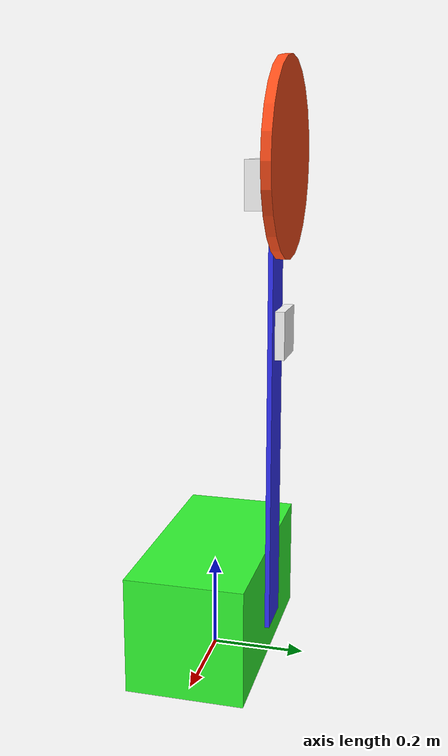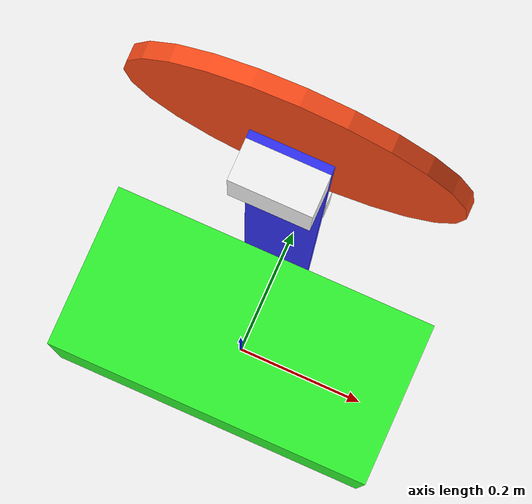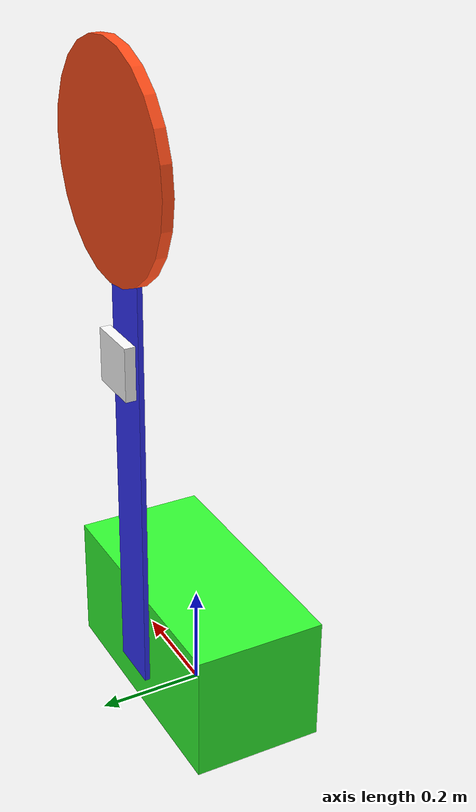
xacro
<?xml version="1.0"?>
<robot xmlns:xacro="http://www.ros.org/wiki/xacro"  name="robot">

    <xacro:include filename="inertia_tensor.xacro"/>
    <xacro:include filename="gazebo_control.xacro"/>

    <xacro:property name="arm_length" value="1"/>
    <xacro:property name="arm_width" value="0.1"/>
    <xacro:property name="arm_thickness" value="0.01"/>
    <xacro:property name="arm_mass" value="0.5"/>
    <xacro:property name="wheel_radius" value="0.2"/>
    <xacro:property name="wheel_thickness" value="0.02"/>
    <xacro:property name="wheel_mass" value="0.05"/>
    <xacro:property name="imu_distance" value="0.65"/>

    <link name="world"></link>

    <!-- base -->
    <joint name="base_joint" type="fixed">
        <origin xyz="0 0 0" rpy="0 0 0"/>
        <parent link="world"/>
        <child link="base_link"/>
    </joint>

    <link name="base_link">
        <visual>
            <origin xyz="0 0 0.125" rpy="0 0 0"/>
            <geometry>
                <box size="0.5 0.25 0.25" />
            </geometry>
            <material name="white">
                <color rgba="0.2 1 0.2 1"/>
            </material>
        </visual>
        <collision>
            <origin xyz="0 0 0.125" rpy="0 0 0"/>
            <geometry>
                <box size="0.5 0.25 0.25" />
            </geometry>
        </collision>
        <xacro:inertial_box mass="12" x="0.5" y="0.25" z="0.25">
            <origin xyz="0 0 0.05" rpy="0 0 0"/>
        </xacro:inertial_box>
    </link>

    <!-- arm -->
    <joint name="arm_joint" type="revolute">
        <origin xyz="0 0.13 0.075" rpy="0 0 0"/>
        <parent link="base_link"/>
        <child link="arm_link"/>
        <axis xyz="0 1 0"/>
        <limit lower="-1.57" upper="1.57" effort="100" velocity="100"/>
    </joint>

    <link name="arm_link">
        <visual>
            <origin xyz="0 0 0.5" rpy="0 0 0"/>
            <geometry>
                <box size="${arm_width} ${arm_thickness} ${arm_length}" />
            </geometry>
            <material name="blue"/>
        </visual>
        <collision>
            <origin xyz="0 0 0.5" rpy="0 0 0"/>
            <geometry>
                <box size="${arm_width} ${arm_thickness} ${arm_length}" />
            </geometry>
        </collision>
        <xacro:inertial_box mass="${arm_mass}" x="${arm_width}" y="${arm_thickness}" z="${arm_length}">
            <origin xyz="0 0 0.5" rpy="0 0 0"/>
        </xacro:inertial_box>
    </link>

    <!-- wheel -->
    <joint name="wheel_joint" type="continuous">
        <origin xyz="0 0.02 ${arm_length}" rpy="-${pi/2} 0 0"/>
        <parent link="arm_link"/>
        <child link="wheel_link"/>
        <axis xyz="0 0 1"/>
    </joint>

    <link name="wheel_link">
        <visual>
            <origin xyz="0 0 0" rpy="0 0 0"/>
            <geometry>
                <cylinder radius="${wheel_radius}" length="${wheel_thickness}"/>
            </geometry>
            <material name="orange"/>
        </visual>
        <collision>
            <origin xyz="0 0 0" rpy="0 0 0"/>
            <geometry>
                <cylinder radius="${wheel_radius}" length="${wheel_thickness}"/>
            </geometry>
        </collision>
        <xacro:inertial_cylinder mass="${wheel_mass}" length="${wheel_thickness}" radius="${wheel_radius}">
            <origin xyz="0 0 0" rpy="0 0 0"/>
        </xacro:inertial_cylinder>
    </link>

    <!-- imu -->
    <joint name="imu_joint" type="fixed">
        <origin xyz="0 0.02 ${imu_distance}" rpy="0 0 0"/>
        <parent link="arm_link"/>
        <child link="imu_link"/>
    </joint>

    <link name="imu_link">
        <visual>
            <origin xyz="0 0 0" rpy="0 0 0"/>
            <geometry>
                <box size="${arm_width} 0.02 ${arm_width}"/>
            </geometry>
            <material name="white"/>
        </visual>
        <collision>
            <origin xyz="0 0 0" rpy="0 0 0"/>
            <geometry>
                <box size="${arm_width} 0.02 ${arm_width}"/>
            </geometry>
        </collision>
        <xacro:inertial_box mass="0.01" x="${arm_width}" y="0.02" z="${arm_width}">
            <origin xyz="0 0 0" rpy="0 0 0"/>
        </xacro:inertial_box>
    </link>

    <!-- motor -->
    <joint name="motor_joint" type="fixed">
        <origin xyz="0 -0.03 0.95" rpy="0 0 0"/>
        <parent link="arm_link"/>
        <child link="motor_link"/>
    </joint>

    <link name="motor_link">
        <visual>
            <origin xyz="0 0 0" rpy="0 0 0"/>
            <geometry>
                <box size="${arm_width} 0.05 ${arm_width}"/>
            </geometry>
            <material name="white"/>
        </visual>
        <collision>
            <origin xyz="0 0 0" rpy="0 0 0"/>
            <geometry>
                <box size="${arm_width} 0.05 ${arm_width}"/>
            </geometry>
        </collision>
        <xacro:inertial_box mass="0.01" x="${arm_width}" y="0.05" z="${arm_width}">
            <origin xyz="0 0 0" rpy="0 0 0"/>
        </xacro:inertial_box>
    </link>

</robot>

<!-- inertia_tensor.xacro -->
<robot xmlns:xacro="http://www.ros.org/wiki/xacro" >

    <material name="white">
        <color rgba="1 1 1 1"/>
    </material>

    <material name="orange">
        <color rgba="1 0.3 0.1 1"/>
    </material>

    <material name="blue">
        <color rgba="0.2 0.2 1 1"/>
    </material>

    <xacro:macro name="inertial_sphere" params="mass radius *origin">
        <inertial>
            <xacro:insert_block name="origin"/>
            <mass value="${mass}" />
            <inertia ixx="${(2/5) * mass * (radius*radius)}" ixy="0.0" ixz="0.0"
                    iyy="${(2/5) * mass * (radius*radius)}" iyz="0.0"
                    izz="${(2/5) * mass * (radius*radius)}" />
        </inertial>
    </xacro:macro>

    <xacro:macro name="inertial_box" params="mass x y z *origin">
        <inertial>
            <xacro:insert_block name="origin"/>
            <mass value="${mass}" />
            <inertia ixx="${(1/12) * mass * (y*y+z*z)}" ixy="0.0" ixz="0.0"
                    iyy="${(1/12) * mass * (x*x+z*z)}" iyz="0.0"
                    izz="${(1/12) * mass * (x*x+y*y)}" />
        </inertial>
    </xacro:macro>

    <xacro:macro name="inertial_cylinder" params="mass length radius *origin">
        <inertial>
            <xacro:insert_block name="origin"/>
            <mass value="${mass}" />
            <inertia ixx="${(1/12) * mass * (3*radius*radius + length*length)}" ixy="0.0" ixz="0.0"
                    iyy="${(1/12) * mass * (3*radius*radius + length*length)}" iyz="0.0"
                    izz="${(1/2) * mass * (radius*radius)}" />
        </inertial>
    </xacro:macro>

</robot>
